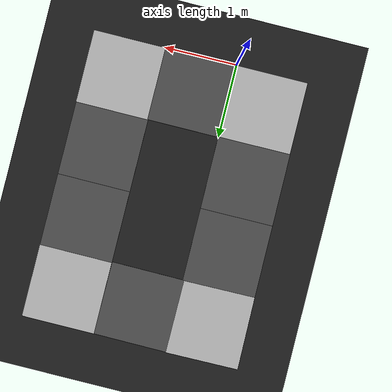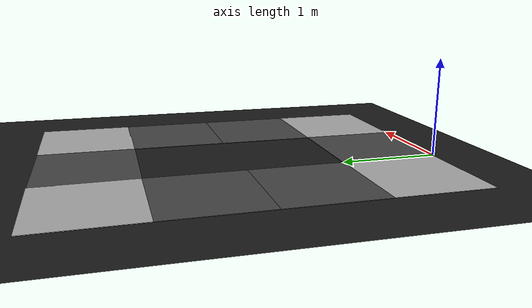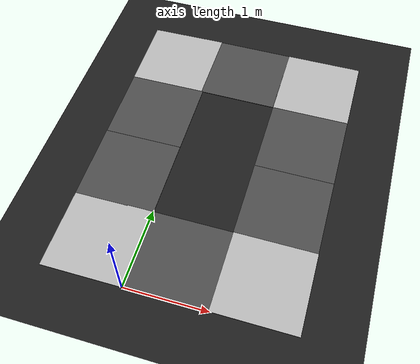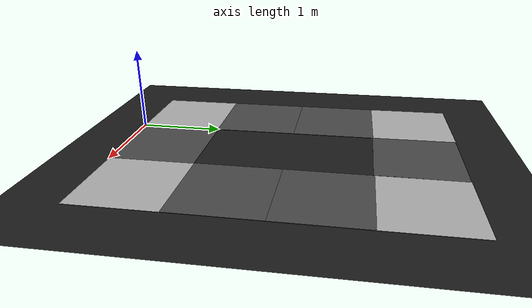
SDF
<sdf version="1.6">
 <world name="default">
  <light name="sun" type="directional">
   <pose>0 0 10 0 -0 0</pose>
   <diffuse>0.8 0.8 0.8 1</diffuse>
   <specular>0.2 0.2 0.2 1</specular>
   <attenuation>
    <range>1000</range>
    <constant>0.9</constant>
    <linear>0.01</linear>
    <quadratic>0.001</quadratic>
   </attenuation>
   <direction>-0.5 0.1 -0.9</direction>
  </light>
  <model name="ground_plane">
   <static>1</static>
   <link name="link">
    <collision name="collision">
     <geometry><plane><normal>0 0 1</normal><size>100 100</size></plane></geometry>
     <surface><friction><ode><mu>100</mu><mu2>50</mu2></ode></friction></surface>
    </collision>
    <visual name="visual">
     <cast_shadows>0</cast_shadows>
     <geometry><plane><normal>0 0 1</normal><size>100 100</size></plane></geometry>
     <material>
      <script><uri>file://media/materials/scripts/gazebo.material</uri><name>Gazebo/Black</name></script>
     </material>
    </visual>
   </link>
  </model>
  <gravity>0 0 -9.8</gravity>
  <magnetic_field>6e-06 2.3e-05 -4.2e-05</magnetic_field>
  <atmosphere type="adiabatic"/>
  <physics name="default_physics" default="0" type="ode">
   <max_step_size>0.01</max_step_size>
   <real_time_factor>1</real_time_factor>
   <real_time_update_rate>0</real_time_update_rate>
  </physics>
  <scene><ambient>0.4 0.4 0.4 1</ambient><background>0.7 0.7 0.7 1</background><shadows>1</shadows></scene>
  <spherical_coordinates>
   <surface_model>EARTH_WGS84</surface_model>
   <latitude_deg>0</latitude_deg>
   <longitude_deg>0</longitude_deg>
   <elevation>0</elevation>
   <heading_deg>0</heading_deg>
  </spherical_coordinates>
  <light name="user_directional_light_0" type="directional">
   <pose>-0.125952 -0.010846 1 0 -0 0</pose>
   <diffuse>0.5 0.5 0.5 1</diffuse>
   <specular>0.1 0.1 0.1 1</specular>
   <direction>0.1 0.1 -0.9</direction>
   <attenuation>
    <range>20</range>
    <constant>0.5</constant>
    <linear>0.01</linear>
    <quadratic>0.001</quadratic>
   </attenuation>
  </light>
  <model name="road_plane">
   <static>1</static>
   <link name="link">
    <collision name="collision"><geometry><box><size>0.5 0.5 0.005</size></box></geometry></collision>
    <visual name="visual">
     <cast_shadows>0</cast_shadows>
     <geometry><box><size>1 1 0.005</size></box></geometry>
     <material>
      <script>
       <uri>model://road_plane/materials/scripts</uri>
       <uri>model://road_plane/materials/textures</uri>
       <name>vrc/road</name>
      </script>
     </material>
    </visual>
   </link>
   <pose>0.486491 0.498025 0 0 -0 0</pose>
  </model>
  <model name="road_diag">
   <static>1</static>
   <link name="link">
    <collision name="collision"><geometry><box><size>0.5 0.5 0.005</size></box></geometry></collision>
    <visual name="visual">
     <cast_shadows>0</cast_shadows>
     <geometry><box><size>1 1 0.005</size></box></geometry>
     <material>
      <script>
       <uri>model://road_diag/materials/scripts</uri>
       <uri>model://road_diag/materials/textures</uri>
       <name>vrc/diag</name>
      </script>
     </material>
    </visual>
   </link>
   <pose>1.47934 0.501511 0 0 0 -1.57147</pose>
  </model>
  <model name="road_plane_0">
   <static>1</static>
   <link name="link">
    <collision name="collision"><geometry><box><size>0.5 0.5 0.005</size></box></geometry></collision>
    <visual name="visual">
     <cast_shadows>0</cast_shadows>
     <geometry><box><size>1 1 0.005</size></box></geometry>
     <material>
      <script>
       <uri>model://road_plane/materials/scripts</uri>
       <uri>model://road_plane/materials/textures</uri>
       <name>vrc/road</name>
      </script>
     </material>
    </visual>
   </link>
   <pose>1.47796 1.50102 0 0 -0 1.56891</pose>
  </model>
  <model name="road_plane_0_clone">
   <static>1</static>
   <link name="link">
    <collision name="collision"><geometry><box><size>0.5 0.5 0.005</size></box></geometry></collision>
    <visual name="visual">
     <cast_shadows>0</cast_shadows>
     <geometry><box><size>1 1 0.005</size></box></geometry>
     <material>
      <script>
       <uri>model://road_plane/materials/scripts</uri>
       <uri>model://road_plane/materials/textures</uri>
       <name>vrc/road</name>
      </script>
     </material>
    </visual>
   </link>
   <pose>1.47997 2.4864 0 0 -0 1.56891</pose>
  </model>
  <model name="road_diag_0">
   <static>1</static>
   <link name="link">
    <collision name="collision"><geometry><box><size>0.5 0.5 0.005</size></box></geometry></collision>
    <visual name="visual">
     <cast_shadows>0</cast_shadows>
     <geometry><box><size>1 1 0.005</size></box></geometry>
     <material>
      <script>
       <uri>model://road_diag/materials/scripts</uri>
       <uri>model://road_diag/materials/textures</uri>
       <name>vrc/diag</name>
      </script>
     </material>
    </visual>
   </link>
   <pose>1.48223 3.47704 0 0 -0 0</pose>
  </model>
  <model name="road_plane_clone">
   <static>1</static>
   <link name="link">
    <collision name="collision"><geometry><box><size>0.5 0.5 0.005</size></box></geometry></collision>
    <visual name="visual">
     <cast_shadows>0</cast_shadows>
     <geometry><box><size>1 1 0.005</size></box></geometry>
     <material>
      <script>
       <uri>model://road_plane/materials/scripts</uri>
       <uri>model://road_plane/materials/textures</uri>
       <name>vrc/road</name>
      </script>
     </material>
    </visual>
   </link>
   <pose>0.481067 3.47673 0 0 -0 3.13665</pose>
  </model>
  <model name="road_diag_0_clone">
   <static>1</static>
   <link name="link">
    <collision name="collision"><geometry><box><size>0.5 0.5 0.005</size></box></geometry></collision>
    <visual name="visual">
     <cast_shadows>0</cast_shadows>
     <geometry><box><size>1 1 0.005</size></box></geometry>
     <material>
      <script>
       <uri>model://road_diag/materials/scripts</uri>
       <uri>model://road_diag/materials/textures</uri>
       <name>vrc/diag</name>
      </script>
     </material>
    </visual>
   </link>
   <pose>-0.508599 3.47886 0 0 -0 1.58282</pose>
  </model>
  <model name="road_plane_0_clone_clone">
   <static>1</static>
   <link name="link">
    <collision name="collision"><geometry><box><size>0.5 0.5 0.005</size></box></geometry></collision>
    <visual name="visual">
     <cast_shadows>0</cast_shadows>
     <geometry><box><size>1 1 0.005</size></box></geometry>
     <material>
      <script>
       <uri>model://road_plane/materials/scripts</uri>
       <uri>model://road_plane/materials/textures</uri>
       <name>vrc/road</name>
      </script>
     </material>
    </visual>
   </link>
   <pose>-0.500601 2.48236 0 0 0 -1.56646</pose>
  </model>
  <model name="road_plane_0_clone_clone_clone">
   <static>1</static>
   <link name="link">
    <collision name="collision"><geometry><box><size>0.5 0.5 0.005</size></box></geometry></collision>
    <visual name="visual">
     <cast_shadows>0</cast_shadows>
     <geometry><box><size>1 1 0.005</size></box></geometry>
     <material>
      <script>
       <uri>model://road_plane/materials/scripts</uri>
       <uri>model://road_plane/materials/textures</uri>
       <name>vrc/road</name>
      </script>
     </material>
    </visual>
   </link>
   <pose>-0.496824 1.48871 0 0 0 -1.56646</pose>
  </model>
  <model name="road_diag_clone">
   <static>1</static>
   <link name="link">
    <collision name="collision"><geometry><box><size>0.5 0.5 0.005</size></box></geometry></collision>
    <visual name="visual">
     <cast_shadows>0</cast_shadows>
     <geometry><box><size>1 1 0.005</size></box></geometry>
     <material>
      <script>
       <uri>model://road_diag/materials/scripts</uri>
       <uri>model://road_diag/materials/textures</uri>
       <name>vrc/diag</name>
      </script>
     </material>
    </visual>
   </link>
   <pose>-0.490463 0.497307 0 0 0 -3.14005</pose>
  </model>
 </world>
</sdf>
